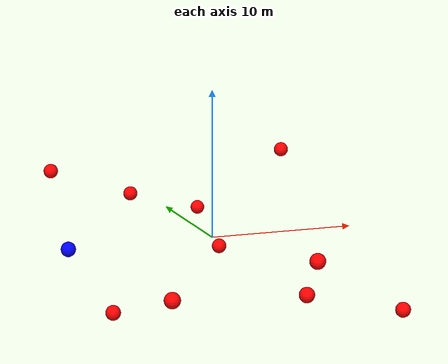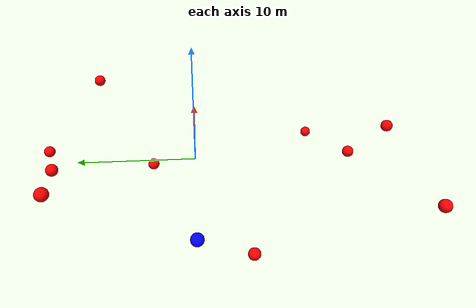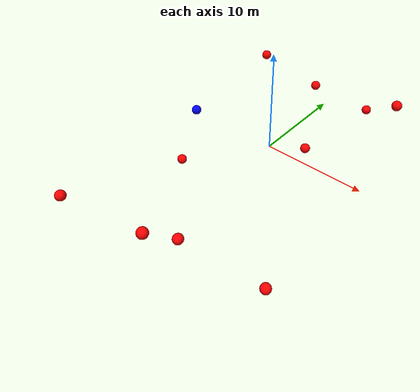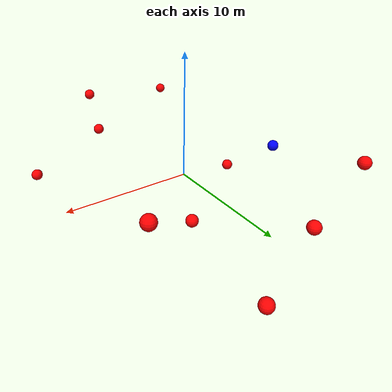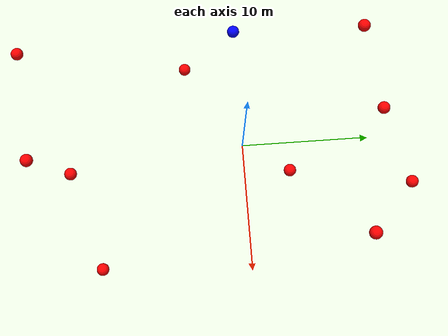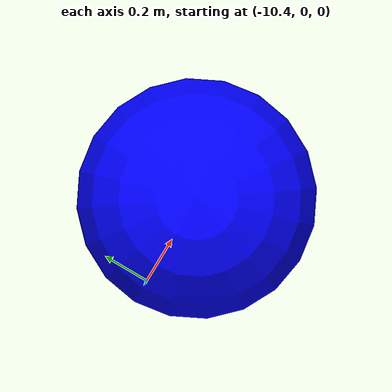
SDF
<?xml version="1.0" ?>
<sdf version="1.8">
    <world name="3d_world">
        <physics name="1ms" type="ode">
            <max_step_size>0.001</max_step_size>
            <real_time_factor>1.0</real_time_factor>
            <real_time_update_rate>1000.0</real_time_update_rate>
        </physics>
        <gravity>0 0 0</gravity>

        <plugin
            filename="gz-sim-physics-system"
            name="gz::sim::v8::systems::Physics">
        </plugin>
        <plugin
            filename="libignition-gazebo-user-commands-system.so"
            name="ignition::gazebo::systems::UserCommands">
        </plugin>
        <plugin
            filename="gz-sim-scene-broadcaster-system"
            name="gz::sim::systems::SceneBroadcaster">
        </plugin>
        <plugin
            filename="gz-sim-sensors-system"
            name="gz::sim::systems::Sensors">
            <render_engine>ogre2</render_engine>
        </plugin>

        <light type="directional" name="sun">
            <cast_shadows>true</cast_shadows>
            <pose>0 0 10 0 0 0</pose>
            <diffuse>0.8 0.8 0.8 1</diffuse>
            <specular>0.2 0.2 0.2 1</specular>
            <attenuation>
                <range>1000</range>
                <constant>0.9</constant>
                <linear>0.01</linear>
                <quadratic>0.001</quadratic>
            </attenuation>
            <direction>-0.5 0.1 -0.9</direction>
        </light>

        <!-- AGENTE -->
        <model name='agente' canonical_link='chassis'>
            <pose relative_to='world'>-10.0 0 0.0 0 0 0</pose>
            <link name='chassis'>
                <pose relative_to='__model__'>0.0 0 0.0 0 0 0</pose>
                <inertial>
                    <mass>1.14395</mass>
                    <inertia>
                        <ixx>0.095329</ixx>
                        <ixy>0</ixy>
                        <ixz>0</ixz>
                        <iyy>0.381317</iyy>
                        <iyz>0</iyz>
                        <izz>0.476646</izz>
                    </inertia>
                </inertial>
                <visual name='visual'>
                    <geometry>
                        <sphere>
                            <radius>0.5</radius>
                        </sphere>
                    </geometry>
                    <material>
                        <ambient>0.0 0.0 1.0 1</ambient>
                        <diffuse>0.0 0.0 1.0 1</diffuse>
                        <specular>0.0 0.0 1.0 1</specular>
                    </material>
                </visual>
                <collision name='collision'>
                    <geometry>
                        <sphere>
                            <radius>0.5</radius>
                        </sphere>
                    </geometry>
                </collision>
                <enable_gravity>false</enable_gravity>
            </link>

            <link name='lidar_link'>
                <pose relative_to='chassis'>0.0 0 0.1 0 0 0</pose>
                <inertial>
                    <mass>0.1</mass>
                    <inertia>
                        <ixx>0.000166667</ixx>
                        <iyy>0.000166667</iyy>
                        <izz>0.000166667</izz>
                    </inertia>
                </inertial>
                <collision name='collision'>
                    <geometry>
                        <cylinder>
                            <radius>0.05</radius>
                            <length>0.1</length>
                        </cylinder>
                    </geometry>
                </collision>
                <visual name='visual'>
                    <geometry>
                        <cylinder>
                            <radius>0.05</radius>
                            <length>0.1</length>
                        </cylinder>
                    </geometry>
                    <material>
                        <ambient>0.0 1.0 0.0 1</ambient>
                        <diffuse>0.0 1.0 0.0 1</diffuse>
                        <specular>0.0 1.0 0.0 1</specular>
                    </material>
                </visual>
                <sensor name="lidar" type="gpu_lidar">
                    <topic>scan</topic>
                    <update_rate>10</update_rate>
                    <lidar>
                        <scan>
                            <horizontal>
                                <samples>5000</samples>
                                <resolution>1</resolution>
                                <min_angle>-3.14159</min_angle>
                                <max_angle>3.14159</max_angle>
                            </horizontal>
                        </scan>
                        <range>
                            <min>0.1</min>
                            <max>10.0</max>
                            <resolution>0.01</resolution>
                        </range>
                    </lidar>
                    <visualize>true</visualize>
                    <always_on>true</always_on>
                    <update_rate>10</update_rate>
                    <pose_frame>lidar</pose_frame>
                </sensor>
                <enable_gravity>false</enable_gravity>
            </link>

            <joint name="lidar_joint" type="fixed">
                <parent>chassis</parent>
                <child>lidar_link</child>
            </joint>

            <plugin
                filename="ignition-gazebo-joint-state-publisher-system"
                name="ignition::gazebo::systems::JointStatePublisher">
            </plugin>
            <plugin
                filename="ignition-gazebo-odometry-publisher-system"
                name="ignition::gazebo::systems::OdometryPublisher">
                <dimensions>3</dimensions>
            </plugin>
            <plugin
                filename="ignition-gazebo-velocity-control-system"
                name="ignition::gazebo::systems::VelocityControl">
                <initial_linear>0.0 0 0</initial_linear>
                <initial_angular>0 0 0.0</initial_angular>
            </plugin>
            <plugin
                filename="libignition-gazebo-pose-publisher-system.so"
                name="ignition::gazebo::systems::PosePublisher">
                <topic>/agente/pose</topic>
                <frame_id>agente</frame_id>
                <update_rate>30</update_rate>
            </plugin>
        </model>

        <!-- OBSTACLE 1 -->
        <model name='obstacle_1' canonical_link='obstacle'>
            <static>false</static>
            <pose relative_to='world'>8.40 8.92 3.83 0 0 0</pose>
            <link name='obstacle'>
                <pose relative_to='__model__'>0.0 0 0.0 0 0 0</pose>
                <visual name='visual'>
                    <geometry>
                        <sphere>
                            <radius>0.50</radius>
                        </sphere>
                    </geometry>
                    <material>
                        <ambient>1.0 0.0 0.0 1</ambient>
                        <diffuse>1.0 0.0 0.0 1</diffuse>
                        <specular>1.0 0.0 0.0 1</specular>
                    </material>
                </visual>
                <collision name='collision'>
                    <geometry>
                        <sphere>
                            <radius>0.50</radius>
                        </sphere>
                    </geometry>
                </collision>
                <enable_gravity>false</enable_gravity>
            </link>

            <plugin
                filename="ignition-gazebo-velocity-control-system"
                name="ignition::gazebo::systems::VelocityControl">
                <initial_linear>-1.57 -1.14 -0.49</initial_linear>
                <initial_angular>0 0 0</initial_angular>
            </plugin>

            <plugin
                filename="ignition-gazebo-odometry-publisher-system"
                name="ignition::gazebo::systems::OdometryPublisher">
                <dimensions>3</dimensions>
            </plugin>
        </model>

        <!-- OBSTACLE 2 -->
        <model name='obstacle_2' canonical_link='obstacle'>
            <static>false</static>
            <pose relative_to='world'>-2.17 11.51 0.82 0 0 0</pose>
            <link name='obstacle'>
                <pose relative_to='__model__'>0.0 0 0.0 0 0 0</pose>
                <visual name='visual'>
                    <geometry>
                        <sphere>
                            <radius>0.50</radius>
                        </sphere>
                    </geometry>
                    <material>
                        <ambient>1.0 0.0 0.0 1</ambient>
                        <diffuse>1.0 0.0 0.0 1</diffuse>
                        <specular>1.0 0.0 0.0 1</specular>
                    </material>
                </visual>
                <collision name='collision'>
                    <geometry>
                        <sphere>
                            <radius>0.50</radius>
                        </sphere>
                    </geometry>
                </collision>
                <enable_gravity>false</enable_gravity>
            </link>

            <plugin
                filename="ignition-gazebo-velocity-control-system"
                name="ignition::gazebo::systems::VelocityControl">
                <initial_linear>0.78 -1.84 -0.13</initial_linear>
                <initial_angular>0 0 0</initial_angular>
            </plugin>

            <plugin
                filename="ignition-gazebo-odometry-publisher-system"
                name="ignition::gazebo::systems::OdometryPublisher">
                <dimensions>3</dimensions>
            </plugin>
        </model>

        <!-- OBSTACLE 3 -->
        <model name='obstacle_3' canonical_link='obstacle'>
            <static>false</static>
            <pose relative_to='world'>3.58 13.42 -1.02 0 0 0</pose>
            <link name='obstacle'>
                <pose relative_to='__model__'>0.0 0 0.0 0 0 0</pose>
                <visual name='visual'>
                    <geometry>
                        <sphere>
                            <radius>0.50</radius>
                        </sphere>
                    </geometry>
                    <material>
                        <ambient>1.0 0.0 0.0 1</ambient>
                        <diffuse>1.0 0.0 0.0 1</diffuse>
                        <specular>1.0 0.0 0.0 1</specular>
                    </material>
                </visual>
                <collision name='collision'>
                    <geometry>
                        <sphere>
                            <radius>0.50</radius>
                        </sphere>
                    </geometry>
                </collision>
                <enable_gravity>false</enable_gravity>
            </link>

            <plugin
                filename="ignition-gazebo-velocity-control-system"
                name="ignition::gazebo::systems::VelocityControl">
                <initial_linear>-0.93 -1.77 0.13</initial_linear>
                <initial_angular>0 0 0</initial_angular>
            </plugin>

            <plugin
                filename="ignition-gazebo-odometry-publisher-system"
                name="ignition::gazebo::systems::OdometryPublisher">
                <dimensions>3</dimensions>
            </plugin>
        </model>

        <!-- OBSTACLE 4 -->
        <model name='obstacle_4' canonical_link='obstacle'>
            <static>false</static>
            <pose relative_to='world'>8.72 -11.74 -2.77 0 0 0</pose>
            <link name='obstacle'>
                <pose relative_to='__model__'>0.0 0 0.0 0 0 0</pose>
                <visual name='visual'>
                    <geometry>
                        <sphere>
                            <radius>0.50</radius>
                        </sphere>
                    </geometry>
                    <material>
                        <ambient>1.0 0.0 0.0 1</ambient>
                        <diffuse>1.0 0.0 0.0 1</diffuse>
                        <specular>1.0 0.0 0.0 1</specular>
                    </material>
                </visual>
                <collision name='collision'>
                    <geometry>
                        <sphere>
                            <radius>0.50</radius>
                        </sphere>
                    </geometry>
                </collision>
                <enable_gravity>false</enable_gravity>
            </link>

            <plugin
                filename="ignition-gazebo-velocity-control-system"
                name="ignition::gazebo::systems::VelocityControl">
                <initial_linear>-0.83 1.77 0.42</initial_linear>
                <initial_angular>0 0 0</initial_angular>
            </plugin>

            <plugin
                filename="ignition-gazebo-odometry-publisher-system"
                name="ignition::gazebo::systems::OdometryPublisher">
                <dimensions>3</dimensions>
            </plugin>
        </model>

        <!-- OBSTACLE 5 -->
        <model name='obstacle_5' canonical_link='obstacle'>
            <static>false</static>
            <pose relative_to='world'>1.84 3.79 -1.61 0 0 0</pose>
            <link name='obstacle'>
                <pose relative_to='__model__'>0.0 0 0.0 0 0 0</pose>
                <visual name='visual'>
                    <geometry>
                        <sphere>
                            <radius>0.50</radius>
                        </sphere>
                    </geometry>
                    <material>
                        <ambient>1.0 0.0 0.0 1</ambient>
                        <diffuse>1.0 0.0 0.0 1</diffuse>
                        <specular>1.0 0.0 0.0 1</specular>
                    </material>
                </visual>
                <collision name='collision'>
                    <geometry>
                        <sphere>
                            <radius>0.50</radius>
                        </sphere>
                    </geometry>
                </collision>
                <enable_gravity>false</enable_gravity>
            </link>

            <plugin
                filename="ignition-gazebo-velocity-control-system"
                name="ignition::gazebo::systems::VelocityControl">
                <initial_linear>0.67 -0.59 0.25</initial_linear>
                <initial_angular>0 0 0</initial_angular>
            </plugin>

            <plugin
                filename="ignition-gazebo-odometry-publisher-system"
                name="ignition::gazebo::systems::OdometryPublisher">
                <dimensions>3</dimensions>
            </plugin>
        </model>

        <!-- OBSTACLE 6 -->
        <model name='obstacle_6' canonical_link='obstacle'>
            <static>false</static>
            <pose relative_to='world'>-8.72 -17.78 0.99 0 0 0</pose>
            <link name='obstacle'>
                <pose relative_to='__model__'>0.0 0 0.0 0 0 0</pose>
                <visual name='visual'>
                    <geometry>
                        <sphere>
                            <radius>0.50</radius>
                        </sphere>
                    </geometry>
                    <material>
                        <ambient>1.0 0.0 0.0 1</ambient>
                        <diffuse>1.0 0.0 0.0 1</diffuse>
                        <specular>1.0 0.0 0.0 1</specular>
                    </material>
                </visual>
                <collision name='collision'>
                    <geometry>
                        <sphere>
                            <radius>0.50</radius>
                        </sphere>
                    </geometry>
                </collision>
                <enable_gravity>false</enable_gravity>
            </link>

            <plugin
                filename="ignition-gazebo-velocity-control-system"
                name="ignition::gazebo::systems::VelocityControl">
                <initial_linear>1.19 1.61 -0.09</initial_linear>
                <initial_angular>0 0 0</initial_angular>
            </plugin>

            <plugin
                filename="ignition-gazebo-odometry-publisher-system"
                name="ignition::gazebo::systems::OdometryPublisher">
                <dimensions>3</dimensions>
            </plugin>
        </model>

        <!-- OBSTACLE 7 -->
        <model name='obstacle_7' canonical_link='obstacle'>
            <static>false</static>
            <pose relative_to='world'>-8.37 10.26 3.12 0 0 0</pose>
            <link name='obstacle'>
                <pose relative_to='__model__'>0.0 0 0.0 0 0 0</pose>
                <visual name='visual'>
                    <geometry>
                        <sphere>
                            <radius>0.50</radius>
                        </sphere>
                    </geometry>
                    <material>
                        <ambient>1.0 0.0 0.0 1</ambient>
                        <diffuse>1.0 0.0 0.0 1</diffuse>
                        <specular>1.0 0.0 0.0 1</specular>
                    </material>
                </visual>
                <collision name='collision'>
                    <geometry>
                        <sphere>
                            <radius>0.50</radius>
                        </sphere>
                    </geometry>
                </collision>
                <enable_gravity>false</enable_gravity>
            </link>

            <plugin
                filename="ignition-gazebo-velocity-control-system"
                name="ignition::gazebo::systems::VelocityControl">
                <initial_linear>0.97 -1.67 -0.51</initial_linear>
                <initial_angular>0 0 0</initial_angular>
            </plugin>

            <plugin
                filename="ignition-gazebo-odometry-publisher-system"
                name="ignition::gazebo::systems::OdometryPublisher">
                <dimensions>3</dimensions>
            </plugin>
        </model>

        <!-- OBSTACLE 8 -->
        <model name='obstacle_8' canonical_link='obstacle'>
            <static>false</static>
            <pose relative_to='world'>1.26 -13.84 -0.59 0 0 0</pose>
            <link name='obstacle'>
                <pose relative_to='__model__'>0.0 0 0.0 0 0 0</pose>
                <visual name='visual'>
                    <geometry>
                        <sphere>
                            <radius>0.50</radius>
                        </sphere>
                    </geometry>
                    <material>
                        <ambient>1.0 0.0 0.0 1</ambient>
                        <diffuse>1.0 0.0 0.0 1</diffuse>
                        <specular>1.0 0.0 0.0 1</specular>
                    </material>
                </visual>
                <collision name='collision'>
                    <geometry>
                        <sphere>
                            <radius>0.50</radius>
                        </sphere>
                    </geometry>
                </collision>
                <enable_gravity>false</enable_gravity>
            </link>

            <plugin
                filename="ignition-gazebo-velocity-control-system"
                name="ignition::gazebo::systems::VelocityControl">
                <initial_linear>0.66 1.89 0.08</initial_linear>
                <initial_angular>0 0 0</initial_angular>
            </plugin>

            <plugin
                filename="ignition-gazebo-odometry-publisher-system"
                name="ignition::gazebo::systems::OdometryPublisher">
                <dimensions>3</dimensions>
            </plugin>
        </model>

        <!-- OBSTACLE 9 -->
        <model name='obstacle_9' canonical_link='obstacle'>
            <static>false</static>
            <pose relative_to='world'>-8.26 -4.27 -3.35 0 0 0</pose>
            <link name='obstacle'>
                <pose relative_to='__model__'>0.0 0 0.0 0 0 0</pose>
                <visual name='visual'>
                    <geometry>
                        <sphere>
                            <radius>0.50</radius>
                        </sphere>
                    </geometry>
                    <material>
                        <ambient>1.0 0.0 0.0 1</ambient>
                        <diffuse>1.0 0.0 0.0 1</diffuse>
                        <specular>1.0 0.0 0.0 1</specular>
                    </material>
                </visual>
                <collision name='collision'>
                    <geometry>
                        <sphere>
                            <radius>0.50</radius>
                        </sphere>
                    </geometry>
                </collision>
                <enable_gravity>false</enable_gravity>
            </link>

            <plugin
                filename="ignition-gazebo-velocity-control-system"
                name="ignition::gazebo::systems::VelocityControl">
                <initial_linear>1.82 0.65 0.51</initial_linear>
                <initial_angular>0 0 0</initial_angular>
            </plugin>

            <plugin
                filename="ignition-gazebo-odometry-publisher-system"
                name="ignition::gazebo::systems::OdometryPublisher">
                <dimensions>3</dimensions>
            </plugin>
        </model>

        <!-- OBSTACLE 10 -->
        <model name='obstacle_10' canonical_link='obstacle'>
            <static>false</static>
            <pose relative_to='world'>0.76 -16.72 2.26 0 0 0</pose>
            <link name='obstacle'>
                <pose relative_to='__model__'>0.0 0 0.0 0 0 0</pose>
                <visual name='visual'>
                    <geometry>
                        <sphere>
                            <radius>0.50</radius>
                        </sphere>
                    </geometry>
                    <material>
                        <ambient>1.0 0.0 0.0 1</ambient>
                        <diffuse>1.0 0.0 0.0 1</diffuse>
                        <specular>1.0 0.0 0.0 1</specular>
                    </material>
                </visual>
                <collision name='collision'>
                    <geometry>
                        <sphere>
                            <radius>0.50</radius>
                        </sphere>
                    </geometry>
                </collision>
                <enable_gravity>false</enable_gravity>
            </link>

            <plugin
                filename="ignition-gazebo-velocity-control-system"
                name="ignition::gazebo::systems::VelocityControl">
                <initial_linear>0.36 1.95 -0.26</initial_linear>
                <initial_angular>0 0 0</initial_angular>
            </plugin>

            <plugin
                filename="ignition-gazebo-odometry-publisher-system"
                name="ignition::gazebo::systems::OdometryPublisher">
                <dimensions>3</dimensions>
            </plugin>
        </model>

    </world>
</sdf>
